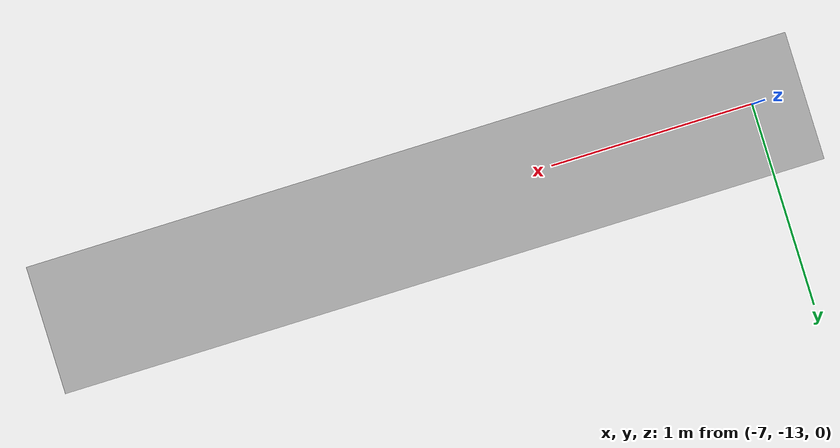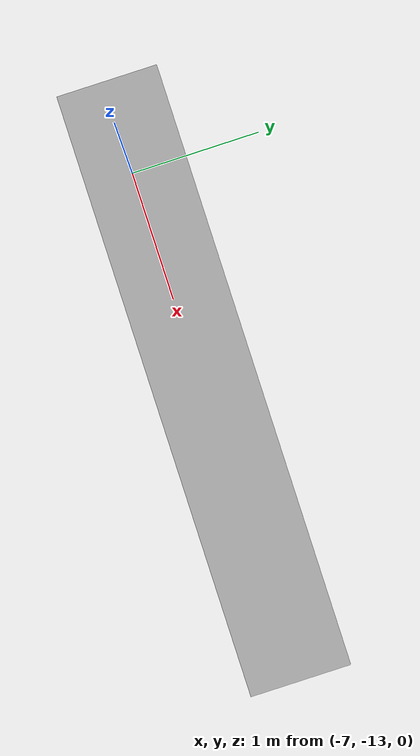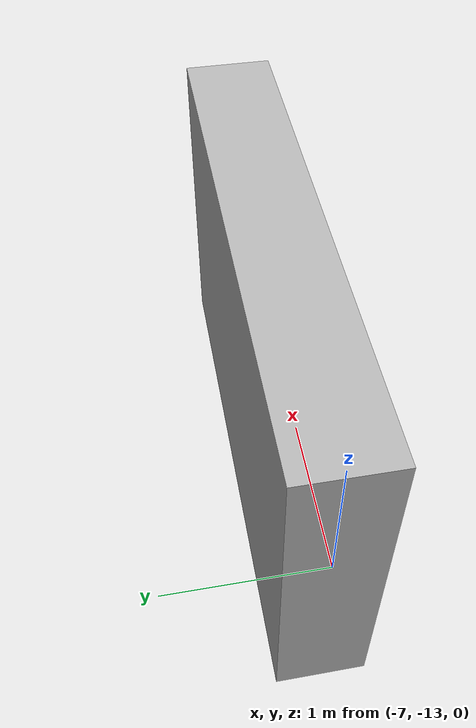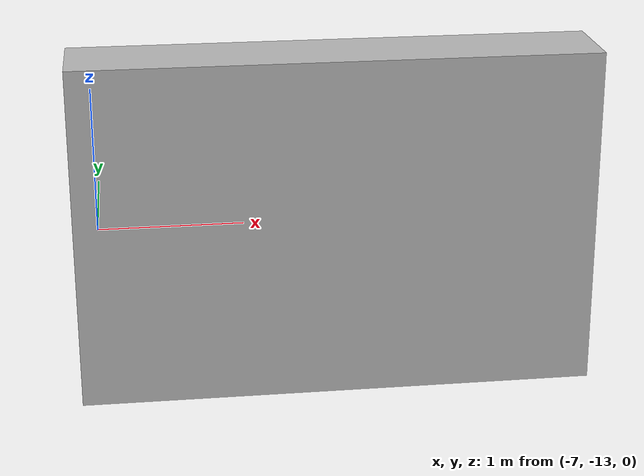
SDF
<sdf version="1.10">
 <world name="qr_stocks">
  <model name="shelf_big_4">
   <static>true</static>
   <pose>-5.36284 -12.9647 0.0 0.0 0.0 0.0</pose>
   <link name="shelf_link">
    <visual name="shelf_visual">
     <geometry><box><size>3.6 0.6 2.4</size></box></geometry>
     <material><ambient>0.7 0.7 0.7 1</ambient><diffuse>0.7 0.7 0.7 1</diffuse></material>
    </visual>
    <collision name="shelf_collision"><geometry><box><size>3.6 0.6 2.4</size></box></geometry></collision>
   </link>
   <link name="qr_link_0">
    <visual name="qr_visual">
     <geometry><plane><normal>0 0 1</normal><size>0.2 0.2</size></plane></geometry>
     <material>
      <ambient>1 1 1 1</ambient>
      <diffuse>1 1 1 1</diffuse>
      <pbr><metal><albedo_map>resources/QR/qr.png</albedo_map></metal></pbr>
     </material>
    </visual>
   </link>
   <joint name="qr_joint_0" type="fixed">
    <parent>shelf_link</parent>
    <child>qr_link_0</child>
    <pose>0.4628399999999999 8.4647 2.2 0.0 1.5700000000000003 0.0</pose>
   </joint>
   <link name="qr_link_1">
    <visual name="qr_visual">
     <geometry><plane><normal>0 0 1</normal><size>0.2 0.2</size></plane></geometry>
     <material>
      <ambient>1 1 1 1</ambient>
      <diffuse>1 1 1 1</diffuse>
      <pbr><metal><albedo_map>resources/QR/qr.png</albedo_map></metal></pbr>
     </material>
    </visual>
   </link>
   <joint name="qr_joint_1" type="fixed">
    <parent>shelf_link</parent>
    <child>qr_link_1</child>
    <pose>0.4628399999999999 7.5647 2.2 0.0 1.5700000000000003 0.0</pose>
   </joint>
   <link name="qr_link_2">
    <visual name="qr_visual">
     <geometry><plane><normal>0 0 1</normal><size>0.2 0.2</size></plane></geometry>
     <material>
      <ambient>1 1 1 1</ambient>
      <diffuse>1 1 1 1</diffuse>
      <pbr><metal><albedo_map>resources/QR/qr.png</albedo_map></metal></pbr>
     </material>
    </visual>
   </link>
   <joint name="qr_joint_2" type="fixed">
    <parent>shelf_link</parent>
    <child>qr_link_2</child>
    <pose>0.4828400000000004 6.664700000000001 2.2 0.0 1.5700000000000003 0.0</pose>
   </joint>
   <link name="qr_link_3">
    <visual name="qr_visual">
     <geometry><plane><normal>0 0 1</normal><size>0.2 0.2</size></plane></geometry>
     <material>
      <ambient>1 1 1 1</ambient>
      <diffuse>1 1 1 1</diffuse>
      <pbr><metal><albedo_map>resources/QR/qr.png</albedo_map></metal></pbr>
     </material>
    </visual>
   </link>
   <joint name="qr_joint_3" type="fixed">
    <parent>shelf_link</parent>
    <child>qr_link_3</child>
    <pose>0.4628399999999999 5.7647 2.2 0.0 1.5700000000000003 0.0</pose>
   </joint>
   <link name="qr_link_4">
    <visual name="qr_visual">
     <geometry><plane><normal>0 0 1</normal><size>0.2 0.2</size></plane></geometry>
     <material>
      <ambient>1 1 1 1</ambient>
      <diffuse>1 1 1 1</diffuse>
      <pbr><metal><albedo_map>resources/QR/qr.png</albedo_map></metal></pbr>
     </material>
    </visual>
   </link>
   <joint name="qr_joint_4" type="fixed">
    <parent>shelf_link</parent>
    <child>qr_link_4</child>
    <pose>0.4628399999999999 4.864700000000001 2.2 0.0 1.5700000000000003 0.0</pose>
   </joint>
   <link name="qr_link_5">
    <visual name="qr_visual">
     <geometry><plane><normal>0 0 1</normal><size>0.2 0.2</size></plane></geometry>
     <material>
      <ambient>1 1 1 1</ambient>
      <diffuse>1 1 1 1</diffuse>
      <pbr><metal><albedo_map>resources/QR/qr.png</albedo_map></metal></pbr>
     </material>
    </visual>
   </link>
   <joint name="qr_joint_5" type="fixed">
    <parent>shelf_link</parent>
    <child>qr_link_5</child>
    <pose>0.4628399999999999 7.5647 2.81 0.0 1.5700000000000003 0.0</pose>
   </joint>
   <link name="qr_link_6">
    <visual name="qr_visual">
     <geometry><plane><normal>0 0 1</normal><size>0.2 0.2</size></plane></geometry>
     <material>
      <ambient>1 1 1 1</ambient>
      <diffuse>1 1 1 1</diffuse>
      <pbr><metal><albedo_map>resources/QR/qr.png</albedo_map></metal></pbr>
     </material>
    </visual>
   </link>
   <joint name="qr_joint_6" type="fixed">
    <parent>shelf_link</parent>
    <child>qr_link_6</child>
    <pose>0.4628399999999999 6.2647 2.81 0.0 1.5700000000000003 0.0</pose>
   </joint>
   <link name="qr_link_7">
    <visual name="qr_visual">
     <geometry><plane><normal>0 0 1</normal><size>0.2 0.2</size></plane></geometry>
     <material>
      <ambient>1 1 1 1</ambient>
      <diffuse>1 1 1 1</diffuse>
      <pbr><metal><albedo_map>resources/QR/qr.png</albedo_map></metal></pbr>
     </material>
    </visual>
   </link>
   <joint name="qr_joint_7" type="fixed">
    <parent>shelf_link</parent>
    <child>qr_link_7</child>
    <pose>0.4628399999999999 5.0647 2.81 0.0 1.5700000000000003 0.0</pose>
   </joint>
   <link name="qr_link_8">
    <visual name="qr_visual">
     <geometry><plane><normal>0 0 1</normal><size>0.2 0.2</size></plane></geometry>
     <material>
      <ambient>1 1 1 1</ambient>
      <diffuse>1 1 1 1</diffuse>
      <pbr><metal><albedo_map>resources/QR/qr.png</albedo_map></metal></pbr>
     </material>
    </visual>
   </link>
   <joint name="qr_joint_8" type="fixed">
    <parent>shelf_link</parent>
    <child>qr_link_8</child>
    <pose>0.49284000000000017 3.9847 2.2 0.0 1.5700000000000003 0.0</pose>
   </joint>
   <link name="qr_link_9">
    <visual name="qr_visual">
     <geometry><plane><normal>0 0 1</normal><size>0.2 0.2</size></plane></geometry>
     <material>
      <ambient>1 1 1 1</ambient>
      <diffuse>1 1 1 1</diffuse>
      <pbr><metal><albedo_map>resources/QR/qr.png</albedo_map></metal></pbr>
     </material>
    </visual>
   </link>
   <joint name="qr_joint_9" type="fixed">
    <parent>shelf_link</parent>
    <child>qr_link_9</child>
    <pose>0.49284000000000017 3.0147000000000013 2.2 0.0 1.5700000000000003 0.0</pose>
   </joint>
   <link name="qr_link_10">
    <visual name="qr_visual">
     <geometry><plane><normal>0 0 1</normal><size>0.2 0.2</size></plane></geometry>
     <material>
      <ambient>1 1 1 1</ambient>
      <diffuse>1 1 1 1</diffuse>
      <pbr><metal><albedo_map>resources/QR/qr.png</albedo_map></metal></pbr>
     </material>
    </visual>
   </link>
   <joint name="qr_joint_10" type="fixed">
    <parent>shelf_link</parent>
    <child>qr_link_10</child>
    <pose>0.49284000000000017 3.0147000000000013 2.75 0.0 1.5700000000000003 0.0</pose>
   </joint>
   <link name="qr_link_11">
    <visual name="qr_visual">
     <geometry><plane><normal>0 0 1</normal><size>0.2 0.2</size></plane></geometry>
     <material>
      <ambient>1 1 1 1</ambient>
      <diffuse>1 1 1 1</diffuse>
      <pbr><metal><albedo_map>resources/QR/qr.png</albedo_map></metal></pbr>
     </material>
    </visual>
   </link>
   <joint name="qr_joint_11" type="fixed">
    <parent>shelf_link</parent>
    <child>qr_link_11</child>
    <pose>0.49284000000000017 2.1747000000000014 2.2 0.0 1.5700000000000003 0.0</pose>
   </joint>
   <link name="qr_link_12">
    <visual name="qr_visual">
     <geometry><plane><normal>0 0 1</normal><size>0.2 0.2</size></plane></geometry>
     <material>
      <ambient>1 1 1 1</ambient>
      <diffuse>1 1 1 1</diffuse>
      <pbr><metal><albedo_map>resources/QR/qr.png</albedo_map></metal></pbr>
     </material>
    </visual>
   </link>
   <joint name="qr_joint_12" type="fixed">
    <parent>shelf_link</parent>
    <child>qr_link_12</child>
    <pose>0.49284000000000017 1.2247000000000003 2.2 0.0 1.5700000000000003 0.0</pose>
   </joint>
   <link name="qr_link_13">
    <visual name="qr_visual">
     <geometry><plane><normal>0 0 1</normal><size>0.2 0.2</size></plane></geometry>
     <material>
      <ambient>1 1 1 1</ambient>
      <diffuse>1 1 1 1</diffuse>
      <pbr><metal><albedo_map>resources/QR/qr.png</albedo_map></metal></pbr>
     </material>
    </visual>
   </link>
   <joint name="qr_joint_13" type="fixed">
    <parent>shelf_link</parent>
    <child>qr_link_13</child>
    <pose>0.49284000000000017 0.3847000000000005 2.2 0.0 1.5700000000000003 0.0</pose>
   </joint>
   <link name="qr_link_14">
    <visual name="qr_visual">
     <geometry><plane><normal>0 0 1</normal><size>0.2 0.2</size></plane></geometry>
     <material>
      <ambient>1 1 1 1</ambient>
      <diffuse>1 1 1 1</diffuse>
      <pbr><metal><albedo_map>resources/QR/qr.png</albedo_map></metal></pbr>
     </material>
    </visual>
   </link>
   <joint name="qr_joint_14" type="fixed">
    <parent>shelf_link</parent>
    <child>qr_link_14</child>
    <pose>0.49284000000000017 0.3847000000000005 2.75 0.0 1.5700000000000003 0.0</pose>
   </joint>
   <link name="qr_link_15">
    <visual name="qr_visual">
     <geometry><plane><normal>0 0 1</normal><size>0.2 0.2</size></plane></geometry>
     <material>
      <ambient>1 1 1 1</ambient>
      <diffuse>1 1 1 1</diffuse>
      <pbr><metal><albedo_map>resources/QR/qr.png</albedo_map></metal></pbr>
     </material>
    </visual>
   </link>
   <joint name="qr_joint_15" type="fixed">
    <parent>shelf_link</parent>
    <child>qr_link_15</child>
    <pose>0.49284000000000017 -0.5252999999999997 2.2 0.0 1.5700000000000003 0.0</pose>
   </joint>
   <link name="qr_link_16">
    <visual name="qr_visual">
     <geometry><plane><normal>0 0 1</normal><size>0.2 0.2</size></plane></geometry>
     <material>
      <ambient>1 1 1 1</ambient>
      <diffuse>1 1 1 1</diffuse>
      <pbr><metal><albedo_map>resources/QR/qr.png</albedo_map></metal></pbr>
     </material>
    </visual>
   </link>
   <joint name="qr_joint_16" type="fixed">
    <parent>shelf_link</parent>
    <child>qr_link_16</child>
    <pose>0.49284000000000017 -0.5252999999999997 2.75 0.0 1.5700000000000003 0.0</pose>
   </joint>
   <link name="qr_link_17">
    <visual name="qr_visual">
     <geometry><plane><normal>0 0 1</normal><size>0.2 0.2</size></plane></geometry>
     <material>
      <ambient>1 1 1 1</ambient>
      <diffuse>1 1 1 1</diffuse>
      <pbr><metal><albedo_map>resources/QR/qr.png</albedo_map></metal></pbr>
     </material>
    </visual>
   </link>
   <joint name="qr_joint_17" type="fixed">
    <parent>shelf_link</parent>
    <child>qr_link_17</child>
    <pose>0.49284000000000017 -1.3353000000000002 2.2 0.0 1.5700000000000003 0.0</pose>
   </joint>
   <link name="qr_link_18">
    <visual name="qr_visual">
     <geometry><plane><normal>0 0 1</normal><size>0.2 0.2</size></plane></geometry>
     <material>
      <ambient>1 1 1 1</ambient>
      <diffuse>1 1 1 1</diffuse>
      <pbr><metal><albedo_map>resources/QR/qr.png</albedo_map></metal></pbr>
     </material>
    </visual>
   </link>
   <joint name="qr_joint_18" type="fixed">
    <parent>shelf_link</parent>
    <child>qr_link_18</child>
    <pose>0.49284000000000017 -2.1152999999999995 2.2 0.0 1.5700000000000003 0.0</pose>
   </joint>
   <link name="qr_link_19">
    <visual name="qr_visual">
     <geometry><plane><normal>0 0 1</normal><size>0.2 0.2</size></plane></geometry>
     <material>
      <ambient>1 1 1 1</ambient>
      <diffuse>1 1 1 1</diffuse>
      <pbr><metal><albedo_map>resources/QR/qr.png</albedo_map></metal></pbr>
     </material>
    </visual>
   </link>
   <joint name="qr_joint_19" type="fixed">
    <parent>shelf_link</parent>
    <child>qr_link_19</child>
    <pose>0.49284000000000017 -2.1152999999999995 2.75 0.0 1.5700000000000003 0.0</pose>
   </joint>
   <link name="qr_link_20">
    <visual name="qr_visual">
     <geometry><plane><normal>0 0 1</normal><size>0.2 0.2</size></plane></geometry>
     <material>
      <ambient>1 1 1 1</ambient>
      <diffuse>1 1 1 1</diffuse>
      <pbr><metal><albedo_map>resources/QR/qr.png</albedo_map></metal></pbr>
     </material>
    </visual>
   </link>
   <joint name="qr_joint_20" type="fixed">
    <parent>shelf_link</parent>
    <child>qr_link_20</child>
    <pose>0.49284000000000017 -3.7653 2.2 0.0 1.5700000000000003 0.0</pose>
   </joint>
   <link name="qr_link_21">
    <visual name="qr_visual">
     <geometry><plane><normal>0 0 1</normal><size>0.2 0.2</size></plane></geometry>
     <material>
      <ambient>1 1 1 1</ambient>
      <diffuse>1 1 1 1</diffuse>
      <pbr><metal><albedo_map>resources/QR/qr.png</albedo_map></metal></pbr>
     </material>
    </visual>
   </link>
   <joint name="qr_joint_21" type="fixed">
    <parent>shelf_link</parent>
    <child>qr_link_21</child>
    <pose>0.49284000000000017 -3.9452999999999996 2.2 0.0 1.5700000000000003 0.0</pose>
   </joint>
   <link name="qr_link_22">
    <visual name="qr_visual">
     <geometry><plane><normal>0 0 1</normal><size>0.2 0.2</size></plane></geometry>
     <material>
      <ambient>1 1 1 1</ambient>
      <diffuse>1 1 1 1</diffuse>
      <pbr><metal><albedo_map>resources/QR/qr.png</albedo_map></metal></pbr>
     </material>
    </visual>
   </link>
   <joint name="qr_joint_22" type="fixed">
    <parent>shelf_link</parent>
    <child>qr_link_22</child>
    <pose>0.49284000000000017 -3.9452999999999996 2.75 0.0 1.5700000000000003 0.0</pose>
   </joint>
   <link name="qr_link_23">
    <visual name="qr_visual">
     <geometry><plane><normal>0 0 1</normal><size>0.2 0.2</size></plane></geometry>
     <material>
      <ambient>1 1 1 1</ambient>
      <diffuse>1 1 1 1</diffuse>
      <pbr><metal><albedo_map>resources/QR/qr.png</albedo_map></metal></pbr>
     </material>
    </visual>
   </link>
   <joint name="qr_joint_23" type="fixed">
    <parent>shelf_link</parent>
    <child>qr_link_23</child>
    <pose>0.49284000000000017 -5.065300000000001 2.2 0.0 1.5700000000000003 0.0</pose>
   </joint>
   <link name="qr_link_24">
    <visual name="qr_visual">
     <geometry><plane><normal>0 0 1</normal><size>0.2 0.2</size></plane></geometry>
     <material>
      <ambient>1 1 1 1</ambient>
      <diffuse>1 1 1 1</diffuse>
      <pbr><metal><albedo_map>resources/QR/qr.png</albedo_map></metal></pbr>
     </material>
    </visual>
   </link>
   <joint name="qr_joint_24" type="fixed">
    <parent>shelf_link</parent>
    <child>qr_link_24</child>
    <pose>0.49284000000000017 -5.065300000000001 2.75 0.0 1.5700000000000003 0.0</pose>
   </joint>
   <link name="qr_link_25">
    <visual name="qr_visual">
     <geometry><plane><normal>0 0 1</normal><size>0.2 0.2</size></plane></geometry>
     <material>
      <ambient>1 1 1 1</ambient>
      <diffuse>1 1 1 1</diffuse>
      <pbr><metal><albedo_map>resources/QR/qr.png</albedo_map></metal></pbr>
     </material>
    </visual>
   </link>
   <joint name="qr_joint_25" type="fixed">
    <parent>shelf_link</parent>
    <child>qr_link_25</child>
    <pose>0.49284000000000017 -5.805299999999999 2.2 0.0 1.5700000000000003 0.0</pose>
   </joint>
   <link name="qr_link_26">
    <visual name="qr_visual">
     <geometry><plane><normal>0 0 1</normal><size>0.2 0.2</size></plane></geometry>
     <material>
      <ambient>1 1 1 1</ambient>
      <diffuse>1 1 1 1</diffuse>
      <pbr><metal><albedo_map>resources/QR/qr.png</albedo_map></metal></pbr>
     </material>
    </visual>
   </link>
   <joint name="qr_joint_26" type="fixed">
    <parent>shelf_link</parent>
    <child>qr_link_26</child>
    <pose>0.49284000000000017 -5.805299999999999 2.75 0.0 1.5700000000000003 0.0</pose>
   </joint>
   <link name="qr_link_27">
    <visual name="qr_visual">
     <geometry><plane><normal>0 0 1</normal><size>0.2 0.2</size></plane></geometry>
     <material>
      <ambient>1 1 1 1</ambient>
      <diffuse>1 1 1 1</diffuse>
      <pbr><metal><albedo_map>resources/QR/qr.png</albedo_map></metal></pbr>
     </material>
    </visual>
   </link>
   <joint name="qr_joint_27" type="fixed">
    <parent>shelf_link</parent>
    <child>qr_link_27</child>
    <pose>0.49284000000000017 -6.0853 2.2 0.0 1.5700000000000003 0.0</pose>
   </joint>
   <link name="qr_link_28">
    <visual name="qr_visual">
     <geometry><plane><normal>0 0 1</normal><size>0.2 0.2</size></plane></geometry>
     <material>
      <ambient>1 1 1 1</ambient>
      <diffuse>1 1 1 1</diffuse>
      <pbr><metal><albedo_map>resources/QR/qr.png</albedo_map></metal></pbr>
     </material>
    </visual>
   </link>
   <joint name="qr_joint_28" type="fixed">
    <parent>shelf_link</parent>
    <child>qr_link_28</child>
    <pose>0.49284000000000017 -7.635300000000001 2.2 0.0 1.5700000000000003 0.0</pose>
   </joint>
   <link name="qr_link_29">
    <visual name="qr_visual">
     <geometry><plane><normal>0 0 1</normal><size>0.2 0.2</size></plane></geometry>
     <material>
      <ambient>1 1 1 1</ambient>
      <diffuse>1 1 1 1</diffuse>
      <pbr><metal><albedo_map>resources/QR/qr.png</albedo_map></metal></pbr>
     </material>
    </visual>
   </link>
   <joint name="qr_joint_29" type="fixed">
    <parent>shelf_link</parent>
    <child>qr_link_29</child>
    <pose>0.49284000000000017 -7.635300000000001 2.75 0.0 1.5700000000000003 0.0</pose>
   </joint>
   <link name="qr_link_30">
    <visual name="qr_visual">
     <geometry><plane><normal>0 0 1</normal><size>0.2 0.2</size></plane></geometry>
     <material>
      <ambient>1 1 1 1</ambient>
      <diffuse>1 1 1 1</diffuse>
      <pbr><metal><albedo_map>resources/QR/qr.png</albedo_map></metal></pbr>
     </material>
    </visual>
   </link>
   <joint name="qr_joint_30" type="fixed">
    <parent>shelf_link</parent>
    <child>qr_link_30</child>
    <pose>0.49284000000000017 -8.3353 2.2 0.0 1.5700000000000003 0.0</pose>
   </joint>
   <link name="qr_link_31">
    <visual name="qr_visual">
     <geometry><plane><normal>0 0 1</normal><size>0.2 0.2</size></plane></geometry>
     <material>
      <ambient>1 1 1 1</ambient>
      <diffuse>1 1 1 1</diffuse>
      <pbr><metal><albedo_map>resources/QR/qr.png</albedo_map></metal></pbr>
     </material>
    </visual>
   </link>
   <joint name="qr_joint_31" type="fixed">
    <parent>shelf_link</parent>
    <child>qr_link_31</child>
    <pose>0.49284000000000017 -8.3353 2.75 0.0 1.5700000000000003 0.0</pose>
   </joint>
  </model>
 </world>
</sdf>
